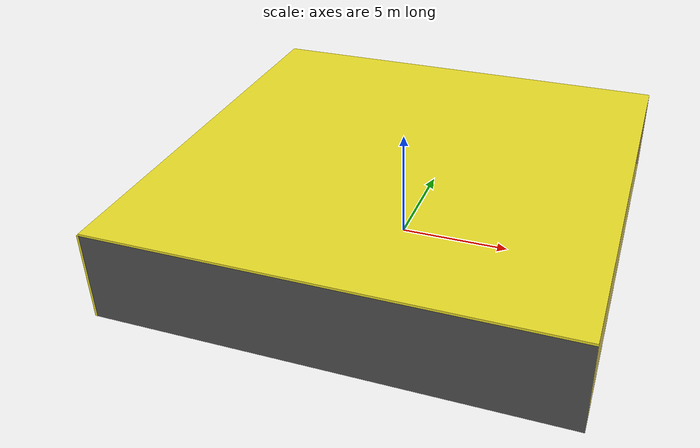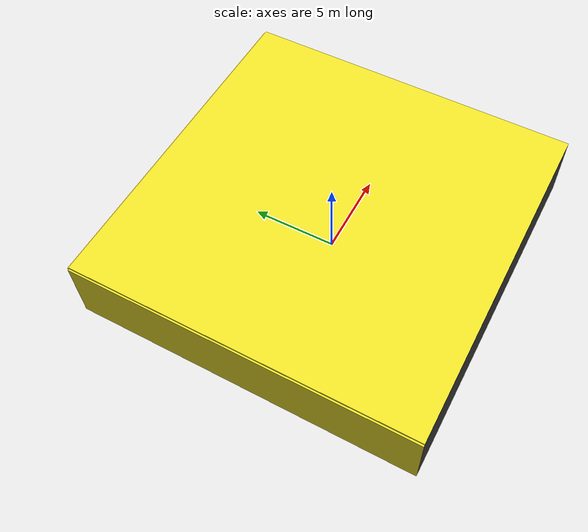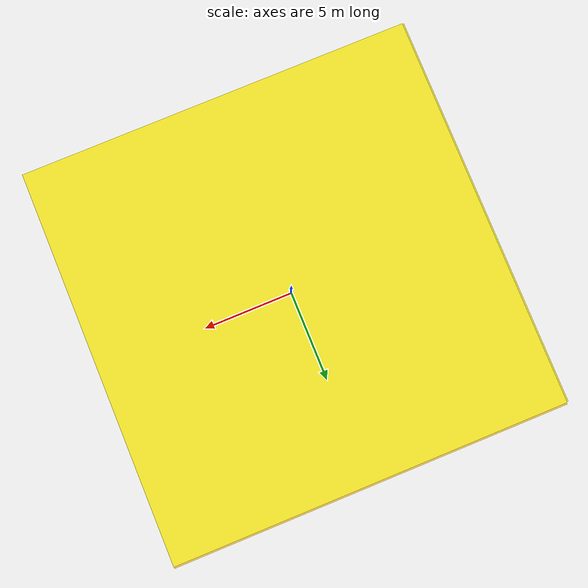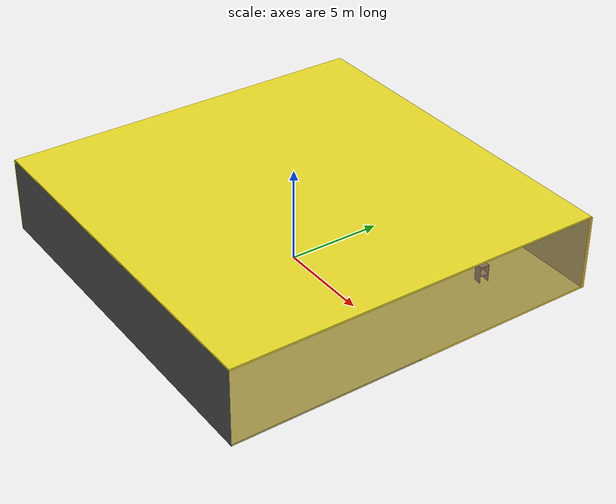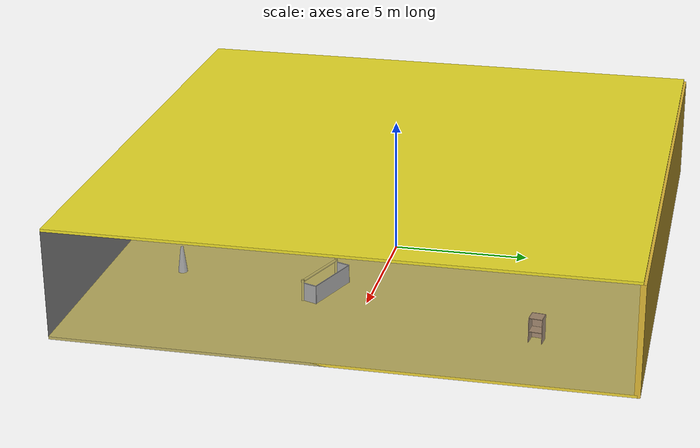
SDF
<sdf version="1.4">
 <world name="default">
  <physics type="ode">
   <max_step_size>0.001</max_step_size>
   <real_time_factor>1</real_time_factor>
   <real_time_update_rate>1000</real_time_update_rate>
   <gravity>0 0 -9.8</gravity>
  </physics>
  <scene><ambient>0.4 0.4 0.4 1</ambient><background>0.7 0.7 0.7 1</background><shadows>1</shadows></scene>
  <model name="Surrounding">
   <static>1</static>
   <link name="Ceiling">
    <collision name="Ceiling_Collision"><geometry><box><size>20 20 0.1</size></box></geometry></collision>
    <visual name="Ceiling_Visual">
     <geometry><box><size>20 20 0.1</size></box></geometry>
     <material>
      <script><uri>file://media/materials/scripts/gazebo.material</uri><name>Gazebo/Yellow</name></script>
     </material>
    </visual>
    <pose>0 0 4.05 0 0 0</pose>
   </link>
   <link name="Wall_South">
    <collision name="Wall_South_Collision">
     <geometry><box><size>20 0 4</size></box></geometry>
     <pose>0 0 2 0 -0 0</pose>
    </collision>
    <visual name="Wall_South_Visual">
     <pose>0 0 2 0 -0 0</pose>
     <geometry><box><size>20 0 4</size></box></geometry>
     <material>
      <script><uri>file://media/materials/scripts/gazebo.material</uri><name>Gazebo/DarkGrey</name></script>
     </material>
    </visual>
    <velocity_decay><linear>0</linear><angular>0</angular></velocity_decay>
    <pose>0 -10 0 0 -0 0</pose>
   </link>
   <link name="Wall_East">
    <collision name="Wall_21_Collision">
     <geometry><box><size>20 0 4</size></box></geometry>
     <pose>0 0 2 0 -0 0</pose>
    </collision>
    <visual name="Wall_21_Visual">
     <pose>0 0 2 0 -0 0</pose>
     <geometry><box><size>20 0 4</size></box></geometry>
     <material>
      <script><uri>file://media/materials/scripts/gazebo.material</uri><name>Gazebo/GreyTransparent</name></script>
     </material>
    </visual>
    <velocity_decay><linear>0</linear><angular>0</angular></velocity_decay>
    <pose>10 0 0 0 -0 1.5708</pose>
   </link>
   <link name="Wall_North">
    <collision name="Wall_22_Collision">
     <geometry><box><size>20 0.2 4</size></box></geometry>
     <pose>0 0 2 0 -0 0</pose>
    </collision>
    <visual name="Wall_22_Visual">
     <pose>0 0 2 0 -0 0</pose>
     <geometry><box><size>20 0.2 4</size></box></geometry>
     <material>
      <script><uri>file://media/materials/scripts/gazebo.material</uri><name>Gazebo/Gold</name></script>
     </material>
    </visual>
    <velocity_decay><linear>0</linear><angular>0</angular></velocity_decay>
    <pose>0 10 0 0 -0 0</pose>
   </link>
   <link name="Wall_West">
    <collision name="Wall_23_Collision">
     <geometry><box><size>20 0.2 4</size></box></geometry>
     <pose>0 0 2 0 -0 0</pose>
    </collision>
    <visual name="Wall_23_Visual">
     <pose>0 0 2 0 -0 0</pose>
     <geometry><box><size>20 0.2 4</size></box></geometry>
     <material>
      <script><uri>file://media/materials/scripts/gazebo.material</uri><name>Gazebo/Yellow</name></script>
     </material>
    </visual>
    <velocity_decay><linear>0</linear><angular>0</angular></velocity_decay>
    <pose>-10 0 0 0 0 -1.5708</pose>
   </link>
   <link name="Ground_link">
    <collision name="collision">
     <pose>0 0 .05 0 -0 0</pose>
     <geometry><box><size>20 20 0.1</size></box></geometry>
    </collision>
    <visual name="visual">
     <pose>0 0 .05 0 -0 0</pose>
     <geometry><box><size>20 20 0.1</size></box></geometry>
     <material>
      <script><uri>file://media/materials/scripts/gazebo.material</uri><name>Gazebo/ZincYellow</name></script>
     </material>
    </visual>
   </link>
   <static>1</static>
  </model>
  <spherical_coordinates>
   <surface_model>EARTH_WGS84</surface_model>
   <latitude_deg>0</latitude_deg>
   <longitude_deg>0</longitude_deg>
   <elevation>0</elevation>
   <heading_deg>0</heading_deg>
  </spherical_coordinates>
  <light name="lightball_0" type="diffuse">
   <diffuse>0.8 0.8 0.8 1</diffuse>
   <specular>0.2 0.2 0.2 1</specular>
   <attenuation>
    <range>100</range>
    <constant>0.7</constant>
    <linear>0.01</linear>
    <quadratic>0.001</quadratic>
   </attenuation>
   <direction>-0.5 0.1 -0.9</direction>
   <pose>5.66742299175 0.884404598168 1.02266500982 0 0 0</pose>
  </light>
  <light name="lightball_1" type="diffuse">
   <diffuse>0.8 0.8 0.8 1</diffuse>
   <specular>0.2 0.2 0.2 1</specular>
   <attenuation>
    <range>100</range>
    <constant>0.7</constant>
    <linear>0.01</linear>
    <quadratic>0.001</quadratic>
   </attenuation>
   <direction>-0.5 0.1 -0.9</direction>
   <pose>-4.99823947082 2.85576165528 1.17282074755 0 0 0</pose>
  </light>
  <light name="lightball_2" type="diffuse">
   <diffuse>0.8 0.8 0.8 1</diffuse>
   <specular>0.2 0.2 0.2 1</specular>
   <attenuation>
    <range>100</range>
    <constant>0.7</constant>
    <linear>0.01</linear>
    <quadratic>0.001</quadratic>
   </attenuation>
   <direction>-0.5 0.1 -0.9</direction>
   <pose>-8.49127296082 4.813259429 0.814192419527 0 0 0</pose>
  </light>
  <light name="lightball_3" type="diffuse">
   <diffuse>0.8 0.8 0.8 1</diffuse>
   <specular>0.2 0.2 0.2 1</specular>
   <attenuation>
    <range>100</range>
    <constant>0.7</constant>
    <linear>0.01</linear>
    <quadratic>0.001</quadratic>
   </attenuation>
   <direction>-0.5 0.1 -0.9</direction>
   <pose>5.31739959923 -8.17555784856 1.68421248172 0 0 0</pose>
  </light>
  <light name="lightball_4" type="diffuse">
   <diffuse>0.8 0.8 0.8 1</diffuse>
   <specular>0.2 0.2 0.2 1</specular>
   <attenuation>
    <range>100</range>
    <constant>0.7</constant>
    <linear>0.01</linear>
    <quadratic>0.001</quadratic>
   </attenuation>
   <direction>-0.5 0.1 -0.9</direction>
   <pose>-0.503917069662 4.61409596471 1.01696513674 0 0 0</pose>
  </light>
  <light name="lightball_5" type="diffuse">
   <diffuse>0.8 0.8 0.8 1</diffuse>
   <specular>0.2 0.2 0.2 1</specular>
   <attenuation>
    <range>100</range>
    <constant>0.7</constant>
    <linear>0.01</linear>
    <quadratic>0.001</quadratic>
   </attenuation>
   <direction>-0.5 0.1 -0.9</direction>
   <pose>5.69213458368 -0.0157508615728 3.6964077984 0 0 0</pose>
  </light>
  <light name="lightball_6" type="diffuse">
   <diffuse>0.8 0.8 0.8 1</diffuse>
   <specular>0.2 0.2 0.2 1</specular>
   <attenuation>
    <range>100</range>
    <constant>0.7</constant>
    <linear>0.01</linear>
    <quadratic>0.001</quadratic>
   </attenuation>
   <direction>-0.5 0.1 -0.9</direction>
   <pose>-6.45737762451 9.42003972231 0.671491268253 0 0 0</pose>
  </light>
  <include><uri>model://table</uri><pose>-7.97982251405 -8.16198102066 0 0 0 1.37182111571</pose></include>
  <include><uri>model://table</uri><pose>-4.30305028855 -6.4952307461 0 0 0 1.28204303866</pose></include>
  <include>
   <uri>model://robocup_3Dsim_goal</uri>
   <pose>-0.944247462085 -3.76781792647 0 0 0 2.29781281948</pose>
  </include>
  <include>
   <uri>model://construction_cone</uri>
   <pose>-1.51600413178 1.08283396626 0 0 0 1.09645558218</pose>
  </include>
  <include>
   <uri>model://textured_shapes</uri>
   <pose>-2.06822501625 4.80230616097 0 0 0 0.692787267334</pose>
  </include>
  <include>
   <uri>model://construction_cone</uri>
   <pose>3.98855951823 -7.17396481177 0 0 0 2.21296348785</pose>
  </include>
  <include>
   <uri>model://robocup_3Dsim_goal</uri>
   <pose>4.46308866227 -1.86133583247 0 0 0 1.21659596792</pose>
  </include>
  <include><uri>model://cabinet</uri><pose>6.85359762619 6.32024201989 0 0 0 3.01549480616</pose></include>
 </world>
</sdf>

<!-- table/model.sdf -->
<sdf version="1.5">
  <model name="table">
    <static>true</static>
    <link name="link">
      <collision name="surface">
        <pose>0 0 1.0 0 0 0</pose>
        <geometry>
          <box>
            <size>1.5 0.8 0.03</size>
          </box>
        </geometry>
        <surface>
          <friction>
            <ode>
              <mu>0.6</mu>
              <mu2>0.6</mu2>
            </ode>
          </friction>
        </surface>
      </collision>
      <visual name="visual1">
        <pose>0 0 1.0 0 0 0</pose>
        <geometry>
          <box>
            <size>1.5 0.8 0.03</size>
          </box>
        </geometry>
        <material>
          <script>
            <uri>model://media/materials/scripts/gazebo.material</uri>
            <name>Gazebo/Wood</name>
          </script>
        </material>
      </visual>
      <collision name="front_left_leg">
        <pose>0.68 0.38 0.5 0 0 0</pose>
        <geometry>
          <cylinder>
            <radius>0.02</radius>
            <length>1.0</length>
          </cylinder>
        </geometry>
      </collision>
      <visual name="front_left_leg">
        <pose>0.68 0.38 0.5 0 0 0</pose>
        <geometry>
          <cylinder>
            <radius>0.02</radius>
            <length>1.0</length>
          </cylinder>
        </geometry>
        <material>
          <script>
            <uri>model://media/materials/scripts/gazebo.material</uri>
            <name>Gazebo/Grey</name>
          </script>
        </material>
      </visual>
      <collision name="front_right_leg">
        <pose>0.68 -0.38 0.5 0 0 0</pose>
        <geometry>
          <cylinder>
            <radius>0.02</radius>
            <length>1.0</length>
          </cylinder>
        </geometry>
      </collision>
      <visual name="front_right_leg">
        <pose>0.68 -0.38 0.5 0 0 0</pose>
        <geometry>
          <cylinder>
            <radius>0.02</radius>
            <length>1.0</length>
          </cylinder>
        </geometry>
        <material>
          <script>
            <uri>model://media/materials/scripts/gazebo.material</uri>
            <name>Gazebo/Grey</name>
          </script>
        </material>
      </visual>
      <collision name="back_right_leg">
        <pose>-0.68 -0.38 0.5 0 0 0</pose>
        <geometry>
          <cylinder>
            <radius>0.02</radius>
            <length>1.0</length>
          </cylinder>
        </geometry>
      </collision>
      <visual name="back_right_leg">
        <pose>-0.68 -0.38 0.5 0 0 0</pose>
        <geometry>
          <cylinder>
            <radius>0.02</radius>
            <length>1.0</length>
          </cylinder>
        </geometry>
        <material>
          <script>
            <uri>model://media/materials/scripts/gazebo.material</uri>
            <name>Gazebo/Grey</name>
          </script>
        </material>
      </visual>
      <collision name="back_left_leg">
        <pose>-0.68 0.38 0.5 0 0 0</pose>
        <geometry>
          <cylinder>
            <radius>0.02</radius>
            <length>1.0</length>
          </cylinder>
        </geometry>
      </collision>
      <visual name="back_left_leg">
        <pose>-0.68 0.38 0.5 0 0 0</pose>
        <geometry>
          <cylinder>
            <radius>0.02</radius>
            <length>1.0</length>
          </cylinder>
        </geometry>
        <material>
          <script>
            <uri>model://media/materials/scripts/gazebo.material</uri>
            <name>Gazebo/Grey</name>
          </script>
        </material>
      </visual>
    </link>
  </model>
</sdf>

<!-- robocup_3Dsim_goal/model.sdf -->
<sdf version="1.5">
  <model name="robocup_3d_goal">
    <static>true</static>
    <link name="left_post">
      <pose>0 1.05 0.45 0 0 0</pose>
      <collision name="collision">
        <geometry>
          <cylinder>
            <radius>0.05</radius>
            <length>0.9</length>
          </cylinder>
        </geometry>
      </collision>
      <visual name="visual">
        <geometry>
          <cylinder>
            <radius>0.05</radius>
            <length>0.9</length>
          </cylinder>
        </geometry>
        <material>
          <script>
            <uri>file://media/materials/scripts/gazebo.material</uri>
            <name>Gazebo/ZincYellow</name>
          </script>
        </material>
      </visual>
    </link>
    <link name="left_support_horiz_lower">
      <pose>0.30 1.05 0.01 0 0 0</pose>
      <collision name="collision">
        <geometry>
          <box>
            <size>0.50 0.02 0.02</size>
          </box>
        </geometry>
      </collision>
      <visual name="visual">
        <geometry>
          <box>
            <size>0.50 0.02 0.02</size>
          </box>
        </geometry>
        <material>
          <script>
            <uri>file://media/materials/scripts/gazebo.material</uri>
            <name>Gazebo/White</name>
          </script>
        </material>
      </visual>
    </link>
    <link name="left_support_horiz_upper">
      <pose>0.30 1.05 0.79 0 0 0</pose>
      <collision name="collision">
        <geometry>
          <box>
            <size>0.50 0.02 0.02</size>
          </box>
        </geometry>
      </collision>
      <visual name="visual">
        <geometry>
          <box>
            <size>0.50 0.02 0.02</size>
          </box>
        </geometry>
        <material>
          <script>
            <uri>file://media/materials/scripts/gazebo.material</uri>
            <name>Gazebo/White</name>
          </script>
        </material>
      </visual>
    </link>
    <link name="left_support_vertical">
      <pose>0.56 1.05 0.4 0 1.5708 0</pose>
      <collision name="collision">
        <geometry>
          <box>
            <size>0.80 0.02 0.02</size>
          </box>
        </geometry>
      </collision>
      <visual name="visual">
        <geometry>
          <box>
            <size>0.80 0.02 0.02</size>
          </box>
        </geometry>
        <material>
          <script>
            <uri>file://media/materials/scripts/gazebo.material</uri>
            <name>Gazebo/White</name>
          </script>
        </material>
      </visual>
    </link>
    <link name="right_support_horiz_lower">
      <pose>0.30 -1.05 0.01 0 0 0</pose>
      <collision name="collision">
        <geometry>
          <box>
            <size>0.50 0.02 0.02</size>
          </box>
        </geometry>
      </collision>
      <visual name="visual">
        <geometry>
          <box>
            <size>0.50 0.02 0.02</size>
          </box>
        </geometry>
        <material>
          <script>
            <uri>file://media/materials/scripts/gazebo.material</uri>
            <name>Gazebo/White</name>
          </script>
        </material>
      </visual>
    </link>
    <link name="right_support_horiz_upper">
      <pose>0.30 -1.05 0.79 0 0 0</pose>
      <collision name="collision">
        <geometry>
          <box>
            <size>0.50 0.02 0.02</size>
          </box>
        </geometry>
      </collision>
      <visual name="visual">
        <geometry>
          <box>
            <size>0.50 0.02 0.02</size>
          </box>
        </geometry>
        <material>
          <script>
            <uri>file://media/materials/scripts/gazebo.material</uri>
            <name>Gazebo/White</name>
          </script>
        </material>
      </visual>
    </link>
    <link name="right_support_vertical">
      <pose>0.56 -1.05 0.4 0 1.5708 0</pose>
      <collision name="collision">
        <geometry>
          <box>
            <size>0.80 0.02 0.02</size>
          </box>
        </geometry>
      </collision>
      <visual name="visual">
        <geometry>
          <box>
            <size>0.80 0.02 0.02</size>
          </box>
        </geometry>
        <material>
          <script>
            <uri>file://media/materials/scripts/gazebo.material</uri>
            <name>Gazebo/White</name>
          </script>
        </material>
      </visual>
    </link>
    <link name="center_support_horiz_lower">
      <pose>0.56 0 0.01 0 1.5708 0</pose>
      <collision name="collision">
        <geometry>
          <box>
            <size>0.02 2.08 0.02</size>
          </box>
        </geometry>
      </collision>
      <visual name="visual">
        <geometry>
          <box>
            <size>0.02 2.08 0.02</size>
          </box>
        </geometry>
        <material>
          <script>
            <uri>file://media/materials/scripts/gazebo.material</uri>
            <name>Gazebo/White</name>
          </script>
        </material>
      </visual>
    </link>
    <link name="center_support_horiz_upper">
      <pose>0.56 0 0.79 0 1.5708 0</pose>
      <collision name="collision">
        <geometry>
          <box>
            <size>0.02 2.08 0.02</size>
          </box>
        </geometry>
      </collision>
      <visual name="visual">
        <geometry>
          <box>
            <size>0.02 2.08 0.02</size>
          </box>
        </geometry>
        <material>
          <script>
            <uri>file://media/materials/scripts/gazebo.material</uri>
            <name>Gazebo/White</name>
          </script>
        </material>
      </visual>
    </link>
    <link name="right_post">
      <pose>0 -1.05 0.45 0 0 0</pose>
      <collision name="collision">
        <geometry>
          <cylinder>
            <radius>0.05</radius>
            <length>0.9</length>
          </cylinder>
        </geometry>
      </collision>
      <visual name="visual">
        <geometry>
          <cylinder>
            <radius>0.05</radius>
            <length>0.9</length>
          </cylinder>
        </geometry>
        <material>
          <script>
            <uri>file://media/materials/scripts/gazebo.material</uri>
            <name>Gazebo/ZincYellow</name>
          </script>
        </material>
      </visual>
    </link>
    <link name="crossbar">
      <pose>0 0 0.85 1.57 1.57 0</pose>
      <collision name="collision">
        <geometry>
          <cylinder>
            <radius>0.05</radius>
            <length>2.0</length>
          </cylinder>
        </geometry>
      </collision>
      <visual name="visual">
        <geometry>
          <cylinder>
            <radius>0.05</radius>
            <length>2.0</length>
          </cylinder>
        </geometry>
        <material>
          <script>
            <uri>file://media/materials/scripts/gazebo.material</uri>
            <name>Gazebo/ZincYellow</name>
          </script>
        </material>
      </visual>
    </link>
    <link name="center_net">
      <pose>0.56 0 0.40 0 0 0</pose>
      <collision name="collision">
        <geometry>
          <box>
            <size>0.01 2.1 0.80</size>
          </box>
        </geometry>
      </collision>
      <visual name="visual">
        <geometry>
          <box>
            <size>0.01 2.1 0.80</size>
          </box>
        </geometry>
        <material>
          <script>
            <uri>model://../model_source/models/robocup09_spl_field/materials/scripts/</uri>
            <uri>model://../model_source/models/robocup09_spl_field/materials/textures/</uri>
            <name>RoboCup/Net</name>
          </script>
        </material>
      </visual>
    </link>
    <link name="left_net">
      <pose>0.30 1.05 0.40 0 0 0</pose>
      <collision name="collision">
        <geometry>
          <box>
            <size>0.50 0.01 0.76</size>
          </box>
        </geometry>
      </collision>
      <visual name="visual">
        <geometry>
          <box>
            <size>0.50 0.01 0.76</size>
          </box>
        </geometry>
        <material>
          <script>
            <uri>model://../model_source/models/robocup09_spl_field/materials/scripts/</uri>
            <uri>model://../model_source/models/robocup09_spl_field/materials/textures/</uri>
            <name>RoboCup/Net</name>
          </script>
        </material>
      </visual>
    </link>
    <link name="right_net">
      <pose>0.30 -1.05 0.40 0 0 0</pose>
      <collision name="collision">
        <geometry>
          <box>
            <size>0.50 0.01 0.76</size>
          </box>
        </geometry>
      </collision>
      <visual name="visual">
        <geometry>
          <box>
            <size>0.50 0.01 0.76</size>
          </box>
        </geometry>
        <material>
          <script>
            <uri>model://../model_source/models/robocup09_spl_field/materials/scripts/</uri>
            <uri>model://../model_source/models/robocup09_spl_field/materials/textures/</uri>
            <name>RoboCup/Net</name>
          </script>
        </material>
      </visual>
    </link>
  </model>
</sdf>

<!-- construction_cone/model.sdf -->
<sdf version="1.5">
  <model name="Construction Cone">
    <link name="link">
      <collision name="collision">
        <geometry>
          <mesh>
            <scale>10 10 10</scale>
            <uri>file://isr-testbed/construction_cone/meshes/construction_cone.dae</uri>
          </mesh>
        </geometry>
      </collision>
      <visual name="visual">
        <geometry>
          <mesh>
            <scale>10 10 10</scale>
            <uri>file://isr-testbed/construction_cone/meshes/construction_cone.dae</uri>
          </mesh>
        </geometry>
      </visual>
    </link>
  </model>
</sdf>

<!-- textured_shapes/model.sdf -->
<sdf version="1.6">
  <model name="textured_shapes">
    <pose>0 0 0.5 0 0 0</pose>
    <link name="box">
      <pose>0 -1.5 0 0 0 0</pose>
      <collision name="collision">
        <geometry>
          <box>
            <size>1 1 1</size>
          </box>
        </geometry>
      </collision>
      <visual name="visual">
        <geometry>
          <box>
            <size>1 1 1</size>
          </box>
        </geometry>
        <material>
          <script>
            <uri>model://../model_source/models/textured_shapes/materials/scripts</uri>
            <uri>model://../model_source/models/textured_shapes/materials/textures</uri>
            <name>TexturedShape/Squares</name>
          </script>
        </material>
      </visual>
    </link>
    <link name="sphere">
      <collision name="collision">
        <geometry>
          <sphere>
            <radius>0.5</radius>
          </sphere>
        </geometry>
      </collision>
      <visual name="visual">
        <geometry>
          <sphere>
            <radius>0.5</radius>
          </sphere>
        </geometry>
        <material>
          <script>
            <uri>model://../model_source/models/textured_shapes/materials/scripts</uri>
            <uri>model://../model_source/models/textured_shapes/materials/textures</uri>
            <name>TexturedShape/Squares</name>
          </script>
        </material>
      </visual>
    </link>
    <link name="cylinder">
      <pose>0 1.5 0 0 0 0</pose>
      <collision name="collision">
        <geometry>
          <cylinder>
            <radius>0.5</radius>
            <length>1</length>
          </cylinder>
        </geometry>
      </collision>
      <visual name="visual">
        <geometry>
          <cylinder>
            <radius>0.5</radius>
            <length>1</length>
          </cylinder>
        </geometry>
        <material>
          <script>
            <uri>model://../model_source/models/textured_shapes/materials/scripts</uri>
            <uri>model://../model_source/models/textured_shapes/materials/textures</uri>
            <name>TexturedShape/Squares</name>
          </script>
        </material>
      </visual>
    </link>
  </model>
</sdf>

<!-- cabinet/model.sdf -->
<sdf version="1.5">
  <model name="cabinet">
    <static>true</static>
    <link name="cabinet_bottom_plate">
      <inertial>
        <pose>0 0 -1 0 0 0</pose>
        <inertia>
          <ixx>2.050000</ixx>
          <ixy>0</ixy>
          <ixz>0</ixz>
          <iyy>2.050000</iyy>
          <iyz>0</iyz>
          <izz>2.050000</izz>
        </inertia>
        <mass>25.000000</mass>
      </inertial>
      <collision name="cabinet_bottom_plate_geom">
        <pose>0 0 0.010000 0 0 0</pose>
        <geometry>
          <box>
            <size>0.450000 0.450000 0.020000</size>
          </box>
        </geometry>
      </collision>
      <visual name="cabinet_bottom_plate_geom_visual">
        <pose>0 0 0.010000 0 0 0</pose>
        <geometry>
          <box>
            <size>0.450000 0.450000 0.020000</size>
          </box>
        </geometry>
        <material>
          <script>
            <uri>model://media/materials/scripts/gazebo.material</uri>
            <name>Gazebo/Wood</name>
          </script>
        </material>
      </visual>
      <collision name="cabinet_bottom_plate_geom_cabinet_back_plate">
        <pose>0.235000 0 0.510000 0 0 0</pose>
        <geometry>
          <box>
            <size>0.020000 0.450000 1.020000</size>
          </box>
        </geometry>
      </collision>
      <visual name="cabinet_bottom_plate_geom_cabinet_back_plate_visual">
        <pose>0.235000 0 0.510000 0 0 0</pose>
        <geometry>
          <box>
            <size>0.020000 0.450000 1.020000</size>
          </box>
        </geometry>
        <material>
          <script>
            <uri>model://media/materials/scripts/gazebo.material</uri>
            <name>Gazebo/Wood</name>
          </script>
        </material>
      </visual>
      <collision name="cabinet_bottom_plate_geom_cabinet_left_plate">
        <pose>0 0.235000 0.510000 0 0 0</pose>
        <geometry>
          <box>
            <size>0.450000 0.020000 1.020000</size>
          </box>
        </geometry>
      </collision>
      <visual name="cabinet_bottom_plate_geom_cabinet_left_plate_visual">
        <pose>0 0.235000 0.510000 0 0 0</pose>
        <geometry>
          <box>
            <size>0.450000 0.020000 1.020000</size>
          </box>
        </geometry>
        <material>
          <script>
            <uri>model://media/materials/scripts/gazebo.material</uri>
            <name>Gazebo/Wood</name>
          </script>
        </material>
      </visual>
      <collision name="cabinet_bottom_plate_geom_cabinet_middle_plate">
        <pose>0 0 0.510000 0 0 0</pose>
        <geometry>
          <box>
            <size>0.450000 0.450000 0.020000</size>
          </box>
        </geometry>
      </collision>
      <visual name="cabinet_bottom_plate_geom_cabinet_middle_plate_visual">
        <pose>0 0 0.510000 0 0 0</pose>
        <geometry>
          <box>
            <size>0.450000 0.450000 0.020000</size>
          </box>
        </geometry>
        <material>
          <script>
            <uri>model://media/materials/scripts/gazebo.material</uri>
            <name>Gazebo/Wood</name>
          </script>
        </material>
      </visual>
      <collision name="cabinet_bottom_plate_geom_cabinet_right_plate">
        <pose>0 -0.235000 0.510000 0 0 0</pose>
        <geometry>
          <box>
            <size>0.450000 0.020000 1.020000</size>
          </box>
        </geometry>
      </collision>
      <visual name="cabinet_bottom_plate_geom_cabinet_right_plate_visual">
        <pose>0 -0.235000 0.510000 0 0 0</pose>
        <geometry>
          <box>
            <size>0.450000 0.020000 1.020000</size>
          </box>
        </geometry>
        <material>
          <script>
            <uri>model://media/materials/scripts/gazebo.material</uri>
            <name>Gazebo/Wood</name>
          </script>
        </material>
      </visual>
      <collision name="cabinet_bottom_plate_geom_cabinet_top_plate">
        <pose>0 0 1.010000 0 0 0</pose>
        <geometry>
          <box>
            <size>0.450000 0.450000 0.020000</size>
          </box>
        </geometry>
      </collision>
      <visual name="cabinet_bottom_plate_geom_cabinet_top_plate_visual">
        <pose>0 0 1.010000 0 0 0</pose>
        <geometry>
          <box>
            <size>0.450000 0.450000 0.020000</size>
          </box>
        </geometry>
        <material>
          <script>
            <uri>model://media/materials/scripts/gazebo.material</uri>
            <name>Gazebo/Wood</name>
          </script>
        </material>
      </visual>
    </link>
  </model>
</sdf>
